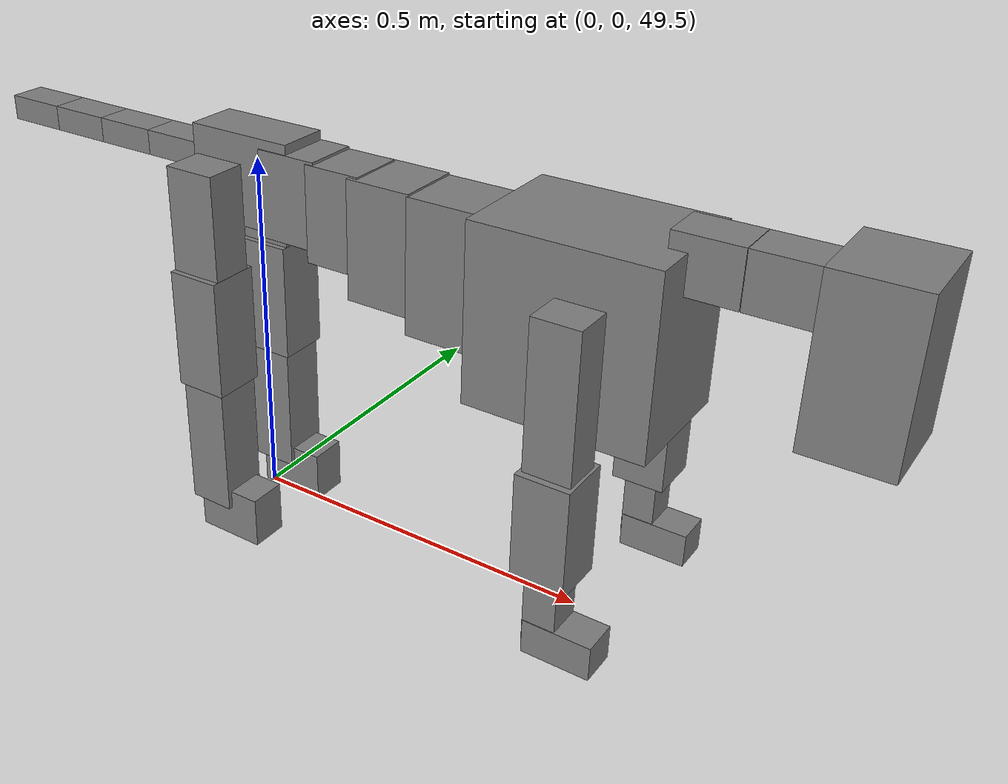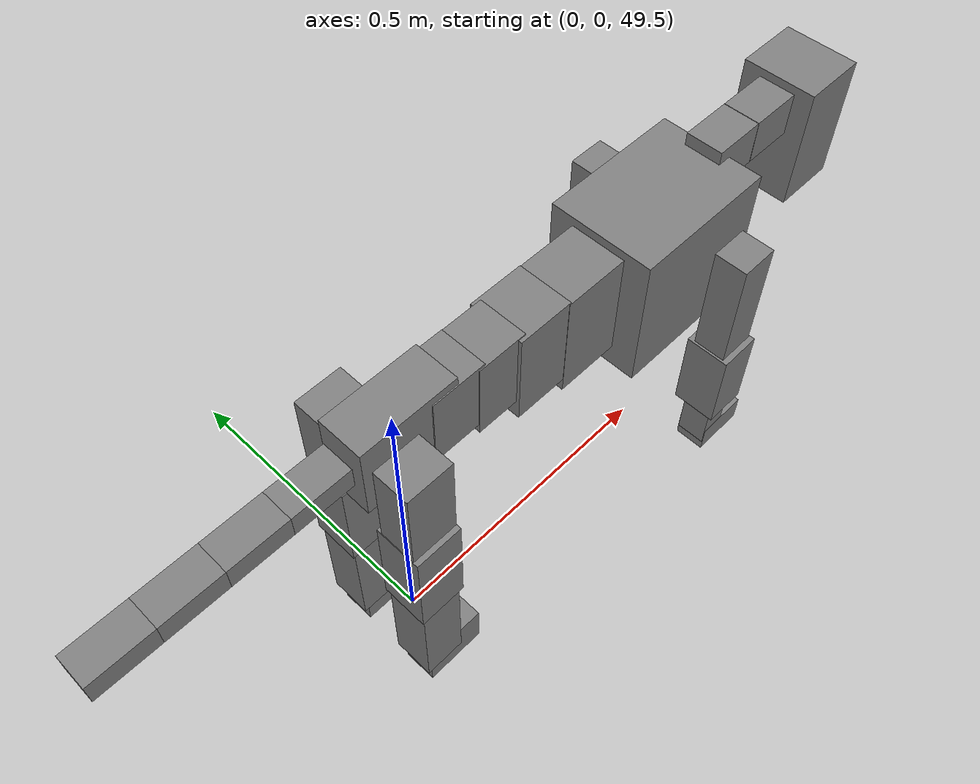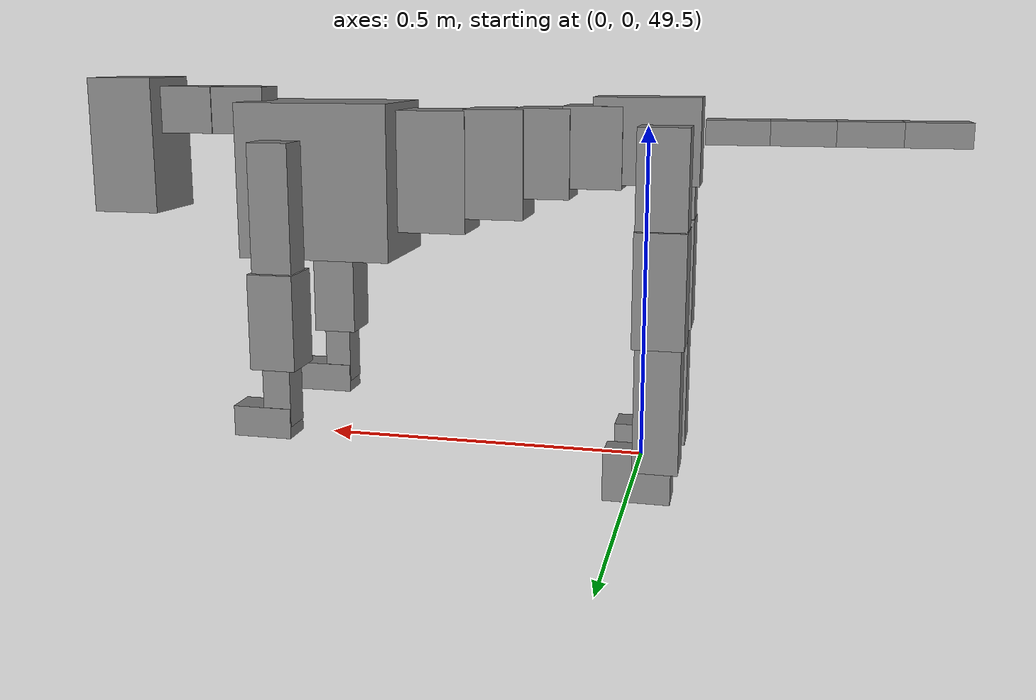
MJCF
<mujoco model="dog">

    <default>
        <joint armature="0.02" stiffness="1" damping="0.2" limited="true"/>
        <geom condim="3" friction="1 0.05 0.05" margin="0.01"/>
        <motor ctrllimited="true" ctrlrange="-1.0 1.0" forcelimited="true" gear="50"/>
    </default>

    <compiler inertiafromgeom="true" angle="radian"/>

    <option timestep="0.016" iterations="50" tolerance="1e-10" solver="Newton" jacobian="dense" cone="pyramidal"/>

    <size nconmax="20000" njmax="60000" nstack="5000000"/>
    <visual>
        <map force="0.1" zfar="30"/>
        <rgba haze="0.15 0.25 0.35 1"/>
        <quality shadowsize="2048"/>
        <global offwidth="800" offheight="800"/>
    </visual>

    <asset>
        <texture type="skybox" builtin="gradient" rgb1="0.3 0.5 0.7" rgb2="0 0 0" width="512" height="512"/>
        <texture name="texplane" type="2d" builtin="checker" rgb1=".2 .3 .4" rgb2=".1 0.15 0.2" width="512" height="512"
                 mark="cross" markrgb=".8 .8 .8"/>
        <texture name="texgeom" type="cube" builtin="flat" mark="cross" width="127" height="1278" rgb1="0.8 0.6 0.4"
                 rgb2="0.8 0.6 0.4" markrgb="1 1 1" random="0.01"/>

        <material name="matplane" reflectance="0.3" texture="texplane" texrepeat="1 1" texuniform="true"/>
        <material name="matgeom" texture="texgeom" texuniform="true" rgba="0.8 0.6 .4 1"/>
    </asset>

    <worldbody>
        <geom name="floor" pos="0 0 0" size="0 0 .25" type="plane" material="matplane" condim="3"/>

        <light directional="false" diffuse=".2 .2 .2" specular="0 0 0" pos="0 0 5" dir="0 0 -1" castshadow="false"/>
        <light mode="targetbodycom" target="torso" directional="false" diffuse=".8 .8 .8" specular="0.3 0.3 0.3"
               pos="0 0 4.0" dir="0 0 -1"/>

        <body name="root" pos="0 0 50">
            <freejoint name="root_1"/>
            <geom type="box" pos="0 0 -0.02" size="0.0774  0.0358  0.063" density="2030"/>

            <body name="spine1" pos="0.054 0 0">
                <joint name="spine1_y" axis="0 1 0" range="0 0.7" limited="true"/>
                <geom type="box" pos="0.02375 0 -0.03" size="0.04375  0.0375  0.05985" density="2030"/>

                <body name="spine2" pos="0.0612 0 0">
                    <joint name="spine2_y" axis="0 1 0" range="-0.15 0.15" limited="true"/>
                    <geom type="box" pos="0.03555  0  -0.04" size="0.04055  0.039  0.06615" density="2030"/>

                    <body name="spine3" pos="0.0730 0 0">
                        <joint name="spine3_y" axis="0 1 0" range="-0.15 0.15" limited="true"/>
                        <geom type="box" pos="0.03555  0  -0.057" size="0.04555  0.0445  0.081" density="2030"/>

                        <body name="spine4" pos="0.0780 0 0">
                            <joint name="spine4_y" axis="0 1 0" range="-0.15 0.15" limited="true"/>
                            <geom type="box" pos="0.05265  0  -0.07" size="0.05265  0.045  0.09135" density="2030"/>

                            <body name="torso" pos="0.1082 0 0">
                                <joint name="torso_y" axis="0 1 0" range="-0.15 0.15" limited="true"/>
                                <geom type="box" pos="0.11925  0  -0.085" size="0.11925  0.085  0.11745"
                                      density="2030"/>

                                <body name="neck1" pos="0.2160  0   0.0180">
                                    <joint name="neck1_y" axis="0 1 0" range="-1.2  -1" limited="true"/>
                                    <geom type="box" pos="0.0423  0  0" size="0.0423  0.03  0.036" density="2325"/>

                                    <body name="neck2" pos="0.0853  0  0">
                                        <joint name="neck2_y" axis="0 1 0" range="0.1  0" limited="true"/>
                                        <geom type="box" pos="0.0423  0  0" size="0.0423  0.03  0.036" density="2325"/>

                                        <body name="head" pos="0.0853  0  0">
                                            <joint name="head_y" axis="0 1 0" range="-0.3  -0.2" limited="true"/>
                                            <geom type="box" pos="0.0531  0  -0.055" size="0.0531  0.06  0.1044"
                                                  density="4030"/>

                                        </body>
                                    </body>
                                </body>

                                <body name="front_shoulder" pos="0.156  0   -0.0480">
                                    <joint name="front_shoulder_y" axis="0 1 0" range="-1 1.5" limited="true"/>
                                    <geom type="box" pos="0 0.13 -0.0822" size="0.0308  0.0263  0.1089" density="1158"/>
                                    <geom type="box" pos="0 -0.13 -0.0822" size="0.0308  0.0263  0.1089"
                                          density="1158"/>

                                    <body name="front_elbow" pos="0  0  -0.1645">
                                        <joint name="front_elbow_y" axis="0 1 0" range="-2 0" limited="true"/>
                                        <geom type="box" pos="0 0.13 -0.0717" size="0.0347  0.0355  0.0717"
                                              density="1081"/>
                                        <geom type="box" pos="0 -0.13 -0.0717" size="0.0347  0.0355  0.0717"
                                              density="1081"/>

                                        <body name="front_wrist" pos="0  0  -0.1434">
                                            <joint name="front_wrist_y" axis="0 1 0" range="-0.2 0" limited="true"/>
                                            <geom type="box" pos="0 0.13 -0.0381" size="0.0213  0.0237  0.0513"
                                                  density="1664"/>
                                            <geom type="box" pos="0 -0.13 -0.0381" size="0.0213  0.0237  0.0513"
                                                  density="1664"/>

                                            <body name="front_finger_end" pos="0  0  -0.0762">
                                                <joint name="front_finger_y" axis="0 1 0" range="-0.4 1"
                                                       limited="true"/>
                                                <geom type="box" pos="0.0245  0.13  -0.0081"
                                                      size="0.0449  0.0245  0.0231" density="1515"/>
                                                <geom type="box" pos="0.0245  -0.13  -0.0081"
                                                      size="0.0449  0.0245  0.0231" density="1515"/>

                                            </body>

                                        </body>
                                    </body>
                                </body>

                            </body>
                        </body>
                    </body>
                </body>
            </body>

            <body name="back_hip" pos="-0.03 0 -0.018">
                <joint name="back_hip_y" axis="0 1 0" range="-1.5 0.3" limited="true"/>
                <geom type="box" pos="0 0.07 -0.0691" size="0.0370  0.0290  0.0919" density="1154"/>
                <geom type="box" pos="0 -0.07 -0.0691" size="0.0370  0.0290  0.0919" density="1154"/>

                <body name="back_knee" pos="0  0  -0.1382">
                    <joint name="back_knee_y" axis="0 1 0" range="0 2.8" limited="true"/>
                    <geom type="box" pos="0 0.07 -0.0686" size="0.0377  0.0371  0.0842" density="1227"/>
                    <geom type="box" pos="0 -0.07 -0.0686" size="0.0377  0.0371  0.0842" density="1227"/>

                    <body name="back_ankle" pos="0  0  -0.1372">
                        <joint name="back_ankle_y" axis="0 1 0" range="-2.2 0" limited="true"/>
                        <geom type="box" pos="0 0.07 -0.0951" size="0.0333  0.0333  0.1064" density="1284"/>
                        <geom type="box" pos="0 -0.07 -0.0951" size="0.0333  0.0333  0.1064" density="1284"/>

                        <body name="back_toe_end" pos="0  0  -0.1903">
                            <joint name="back_toe_y" axis="0 1 0" range="-0.4 1" limited="true"/>
                            <geom type="box" pos="0.0271  0.07  -0.0222" size="0.0498  0.0271  0.0372" density="1515"/>
                            <geom type="box" pos="0.0271  -0.07  -0.0222" size="0.0498  0.0271  0.0372" density="1515"/>

                        </body>
                    </body>
                </body>
            </body>

            <body name="tail1" pos="-0.074 0 -0.006">
                <joint name="tail1_y" axis="0 1 0" range="-0.2 0.2" limited="true"/>
                <geom type="box" pos="-0.0536  0  0" size="0.045  0.025  0.0175" density="1587"/>

                <body name="tail2" pos="-0.09 0 0">
                    <joint name="tail2_y" axis="0 1 0" range="-0.2 0.2" limited="true"/>
                    <geom type="box" pos="-0.0536  0  0" size="0.045  0.025  0.0175" density="1587"/>

                    <body name="tail3" pos="-0.09 0 0">
                        <joint name="tail3_y" axis="0 1 0" range="-0.2 0.2" limited="true"/>
                        <geom type="box" pos="-0.0536  0  0" size="0.045  0.025  0.0175" density="1587"/>

                        <body name="tail4" pos="-0.09 0 0">
                            <joint name="tail4_y" axis="0 1 0" range="-0.2 0.2" limited="true"/>
                            <geom type="box" pos="-0.0536  0  0" size="0.045  0.025  0.0175" density="1587"/>

                        </body>
                    </body>
                </body>
            </body>
        </body>
    </worldbody>

    <actuator>
        <motor joint="spine1_y" forcerange="-150 150     "/>
        <motor joint="spine2_y" forcerange="-150 150     "/>
        <motor joint="spine3_y" forcerange="-150 150     "/>
        <motor joint="spine4_y" forcerange="-150 150     "/>
        <motor joint="torso_y" forcerange="-150 150     "/>
        <motor joint="neck1_y" forcerange="-100 100       "/>
        <motor joint="neck2_y" forcerange="-100 100       "/>
        <motor joint="head_y" forcerange="-150 150       "/>
        <motor joint="front_shoulder_y" forcerange="-108.38 167.27"/>
        <motor joint="front_elbow_y" forcerange="-183.25 174.93"/>
        <motor joint="front_wrist_y" forcerange="-85.60 103.97"/>
        <motor joint="front_finger_y" forcerange="-42.20 48.30"/>
        <motor joint="back_hip_y" forcerange="-378.21 208.45"/>
        <motor joint="back_knee_y" forcerange="-365.64 374.26"/>
        <motor joint="back_angle_y" forcerange="-187.62 245.38"/>
        <motor joint="back_toe_y" forcerange="-81.21 55.96"/>
        <motor joint="tail1_y" forcerange="-50 50     "/>
        <motor joint="tail2_y" forcerange="-50 50     "/>
        <motor joint="tail3_y" forcerange="-50 50     "/>
        <motor joint="tail4_y" forcerange="-50 50     "/>
    </actuator>
</mujoco>
